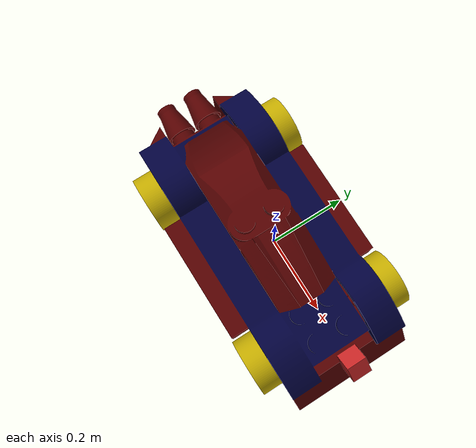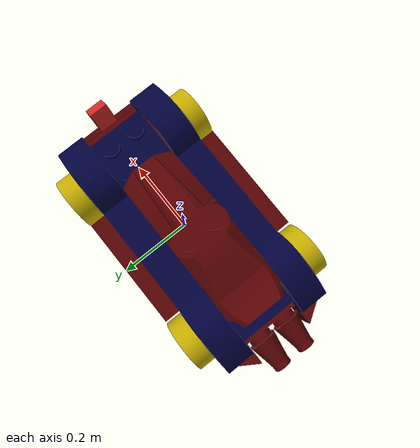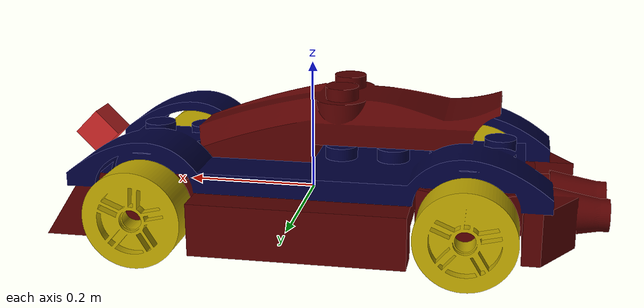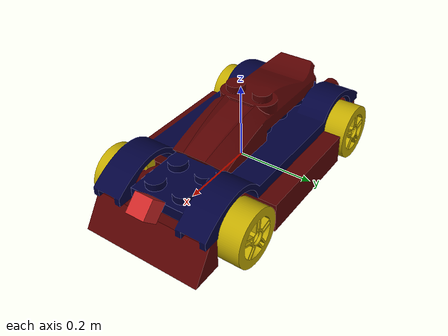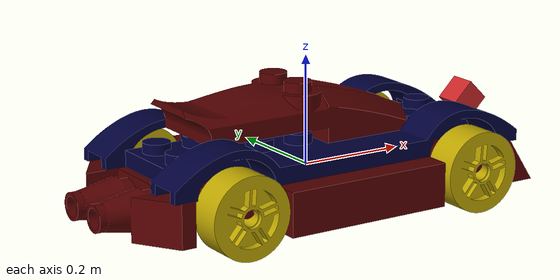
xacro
<?xml version='1.0'?>

<robot name="mogi_bot" xmlns:xacro="http://www.ros.org/wiki/xacro">

  <!-- STEP 3 - Gazebo plugin -->
  <xacro:include filename="$(find line_follower_race_car)/urdf/mogi_bot.gazebo" />

  <!-- STEP 4 - RViz colors -->
  <xacro:include filename="$(find line_follower_race_car)/urdf/materials.xacro" />

  <!-- STEP 1 - Robot chassis -->
  <link name="base_footprint"></link>

  <joint name="base_footprint_joint" type="fixed">
    <origin xyz="0 0 0" rpy="0 0 0" />
    <parent link="base_footprint"/>
    <child link="base_link" />
  </joint>

  <link name='base_link'>
    <pose>0 0 0.1 0 0 -1.5707</pose>

    <inertial>
      <mass value="15.0"/>
      <origin xyz="0.0 0 0" rpy="0 0 0"/>
      <inertia
          ixx="0.1" ixy="0" ixz="0"
          iyy="0.1" iyz="0"
          izz="0.1"
      />
    </inertial>

    <collision name='collision'>
      <origin xyz="0 0 0" rpy=" 0 0 -1.5707"/>
      <geometry>
        <box size=".4 .2 .1"/>
      </geometry>
    </collision>

    <visual name='base_link_visual'>
      <origin xyz="0 0 0" rpy=" 0 0 -1.5707"/>
      <geometry>
        <!--box size=".4 .2 .1"/-->
        <mesh filename = "package://line_follower_race_car/meshes/body.dae"/>
      </geometry>
    </visual>

  </link>

  <!-- STEP 2 - Wheels -->

  <!-- Front left -->
  <joint type="continuous" name="front_left_wheel_joint">
    <origin xyz="0.23 0.17 0" rpy="0 0 0"/>
    <child link="front_left_wheel"/>
    <parent link="base_link"/>
    <axis xyz="0 1 0" rpy="0 0 0"/>
    <limit effort="10000" velocity="1000"/>
    <dynamics damping="1.0" friction="1.0"/>
  </joint>

  <link name='front_left_wheel'>
    <inertial>
      <mass value="5.0"/>
      <origin xyz="0 0 0" rpy="0 1.5707 1.5707"/>
      <inertia
          ixx="0.1" ixy="0" ixz="0"
          iyy="0.1" iyz="0"
          izz="0.1"
      />
    </inertial>

    <collision name='collision'>
      <origin xyz="0 0 0" rpy="0 1.5707 1.5707"/>
      <geometry>
        <cylinder radius=".1" length=".05"/>
      </geometry>
    </collision>

    <visual name='front_left_wheel_visual'>
      <origin xyz="0 0 0" rpy="0 1.5707 1.5707"/>
      <geometry>
        <!--cylinder radius=".1" length=".05"/-->
        <mesh filename = "package://line_follower_race_car/meshes/front_wheels.dae"/>
      </geometry>
    </visual>
  </link>

<!-- Front right -->
  <joint type="continuous" name="front_right_wheel_joint">
    <origin xyz="0.23 -0.19 0" rpy="0 0 0"/>
    <child link="front_right_wheel"/>
    <parent link="base_link"/>
    <axis xyz="0 1 0" rpy="0 0 0"/>
    <limit effort="10000" velocity="1000"/>
    <dynamics damping="1.0" friction="1.0"/>
  </joint>

  <link name='front_right_wheel'>
    <inertial>
      <mass value="5.0"/>
      <origin xyz="0 0 0" rpy="0 1.5707 -1.5707"/>
      <inertia
          ixx="0.1" ixy="0" ixz="0"
          iyy="0.1" iyz="0"
          izz="0.1"
      />
    </inertial>

    <collision name='collision'>
      <origin xyz="0 0 0" rpy="0 1.5707 -1.5707"/>
      <geometry>
        <cylinder radius=".1" length=".05"/>
      </geometry>
    </collision>

    <visual name='front_right_wheel_visual'>
      <origin xyz="0 0 0" rpy="0 1.5707 -1.5707"/>
      <geometry>
        <!--cylinder radius=".1" length=".05"/-->
        <mesh filename = "package://line_follower_race_car/meshes/front_wheels.dae"/>
      </geometry>
    </visual>
  </link>

<!-- Rear left -->
  <joint type="continuous" name="rear_left_wheel_joint">
    <origin xyz="-0.25 0.17 0" rpy="0 0 0"/>
    <child link="rear_left_wheel"/>
    <parent link="base_link"/>
    <axis xyz="0 1 0" rpy="0 0 0"/>
    <limit effort="10000" velocity="1000"/>
    <dynamics damping="1.0" friction="1.0"/>
  </joint>

  <link name='rear_left_wheel'>
    <inertial>
      <mass value="5.0"/>
      <origin xyz="0 0 0" rpy="0 1.5707 1.5707"/>
      <inertia
          ixx="0.1" ixy="0" ixz="0"
          iyy="0.1" iyz="0"
          izz="0.1"
      />
    </inertial>

    <collision name='collision'>
      <origin xyz="0 0 0" rpy="0 1.5707 1.5707"/>
      <geometry>
        <cylinder radius=".1" length=".05"/>
      </geometry>
    </collision>

    <visual name='rear_left_wheel_visual'>
      <origin xyz="0 0 0" rpy="0 1.5707 1.5707"/>
      <geometry>
        <!--cylinder radius=".1" length=".05"/-->
        <mesh filename = "package://line_follower_race_car/meshes/front_wheels.dae"/>
      </geometry>
    </visual>
  </link>

<!-- Rear right -->
  <joint type="continuous" name="rear_right_wheel_joint">
    <origin xyz="-0.25 -0.19 0" rpy="0 0 0"/>
    <child link="rear_right_wheel"/>
    <parent link="base_link"/>
    <axis xyz="0 1 0" rpy="0 0 0"/>
    <limit effort="10000" velocity="1000"/>
    <dynamics damping="1.0" friction="1.0"/>
  </joint>

  <link name='rear_right_wheel'>
    <inertial>
      <mass value="5.0"/>
      <origin xyz="0 0 0" rpy="0 1.5707 -1.5707"/>
      <inertia
          ixx="0.1" ixy="0" ixz="0"
          iyy="0.1" iyz="0"
          izz="0.1"
      />
    </inertial>

    <collision name='collision'>
      <origin xyz="0 0 0" rpy="0 1.5707 -1.5707"/>
      <geometry>
        <cylinder radius=".1" length=".05"/>
      </geometry>
    </collision>

    <visual name='rear_right_wheel_visual'>
      <origin xyz="0 0 0" rpy="0 1.5707 -1.5707"/>
      <geometry>
        <!--cylinder radius=".1" length=".05"/-->
        <mesh filename = "package://line_follower_race_car/meshes/front_wheels.dae"/>
      </geometry>
    </visual>
  </link>

    <!-- Camera -->
  <joint type="fixed" name="camera_joint">
    <origin xyz="0.350 -0.005 0.075" rpy="0 0.785 0"/>
    <child link="camera_link"/>
    <parent link="base_link"/>
    <axis xyz="0 1 0" />
  </joint>

  <link name='camera_link'>
    <pose>0 0 0 0 0 0</pose>
    <inertial>
      <mass value="0.1"/>
      <origin xyz="0 0 0" rpy="0 0 0"/>
      <inertia
          ixx="1e-6" ixy="0" ixz="0"
          iyy="1e-6" iyz="0"
          izz="1e-6"
      />
    </inertial>

    <collision name='collision'>
      <origin xyz="0 0 0" rpy="0 0 0"/>
      <geometry>
        <box size=".05 .05 .05"/>
      </geometry>
    </collision>

    <visual name='camera_link_visual'>
      <origin xyz="0 0 0" rpy="0 0 0"/>
      <geometry>
        <box size=".05 .05 .05"/>
      </geometry>
    </visual>

  </link>

  <gazebo reference="camera_link">
    <material>Gazebo/Red</material>
  </gazebo>

  <joint type="fixed" name="camera_optical_joint">
    <origin xyz="0 0 0" rpy="-1.5707 0 -1.5707"/>
    <child link="camera_link_optical"/>
    <parent link="camera_link"/>
  </joint>

  <link name="camera_link_optical">
  </link>

  <!-- STEP 7 - Gazebo physics -->
  <gazebo reference="front_left_wheel">
    <!-- kp and kd for rubber -->
    <kp>1000000.0</kp>
    <kd>100.0</kd>
    <mu1>1.5</mu1>
    <mu2>1.5</mu2>
    <fdir1>1 0 0</fdir1>
    <maxVel>1.0</maxVel>
    <minDepth>0.00</minDepth>
  </gazebo>

  <gazebo reference="front_right_wheel">
    <!-- kp and kd for rubber -->
    <kp>1000000.0</kp>
    <kd>100.0</kd>
    <mu1>1.5</mu1>
    <mu2>1.5</mu2>
    <fdir1>1 0 0</fdir1>
    <maxVel>1.0</maxVel>
    <minDepth>0.00</minDepth>
  </gazebo>

  <gazebo reference="rear_left_wheel">
    <!-- kp and kd for rubber -->
    <kp>1000000.0</kp>
    <kd>100.0</kd>
    <mu1>1.5</mu1>
    <mu2>1.5</mu2>
    <fdir1>1 0 0</fdir1>
    <maxVel>1.0</maxVel>
    <minDepth>0.00</minDepth>
  </gazebo>

  <gazebo reference="rear_right_wheel">
    <!-- kp and kd for rubber -->
    <kp>1000000.0</kp>
    <kd>100.0</kd>
    <mu1>1.5</mu1>
    <mu2>1.5</mu2>
    <fdir1>1 0 0</fdir1>
    <maxVel>1.0</maxVel>
    <minDepth>0.00</minDepth>
  </gazebo>

</robot>
